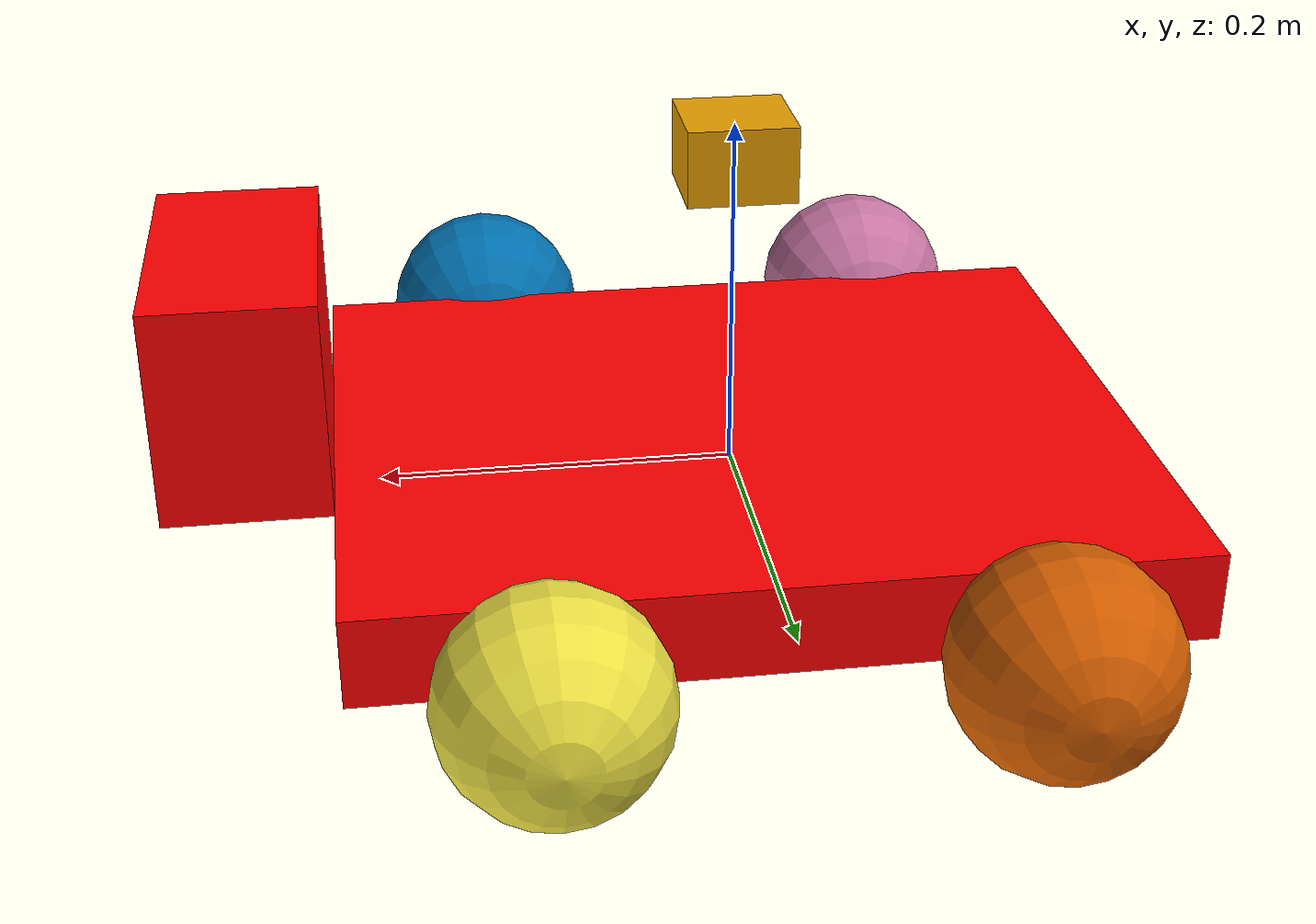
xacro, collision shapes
<?xml version="1.0"?>
<robot xmlns:xacro="http://www.ros.org/wiki/xacro">

    <xacro:include filename="$(find hibachi_description)/urdf/inertial_macros.xacro" />
    <xacro:include filename="$(find hibachi_description)/urdf/wheel.urdf.xacro" />

	<!--  Wheel distance between front and rear -->
	<xacro:property name="wheel_distance" value="0.25" />

	<!-- Wheel distance between left and right side -->
	<xacro:property name="wheel_separation" value="0.475" />

	<!-- Wheel properties -->
	<xacro:property name="wheel_mass" value="0.150" />
	<xacro:property name="wheel_radius" value="0.06" />
	<xacro:property name="wheel_width" value="0.06" />

	<!-- Chassis size -->
	<xacro:property name="chassis_x_size" value="0.45" />
	<xacro:property name="chassis_y_size" value="0.38" />
	<xacro:property name="chassis_z_size" value="0.05" />

	<!-- https://docs.ros.org/en/humble/Tutorials/Intermediate/URDF/Adding-Physical-and-Collision-Properties-to-a-URDF-Model.html -->

    <link name="base_link">

		<visual>
    		<origin xyz="0 0 0" rpy="0 0 0" />
			<geometry>
				<box size="${chassis_x_size} ${chassis_y_size} ${chassis_z_size}"/>
			</geometry>
			<material name="Red">
				<color rgba="${255/255} ${0/255} ${0/255} 1.0"/>
			</material>
		</visual>

		<collision>
			<origin xyz="0 0 0"/>
			<geometry>
				<box size="${chassis_x_size} ${chassis_y_size} ${chassis_z_size}"/>
			</geometry>
		</collision>

		<visual>
    		<origin xyz="${chassis_x_size/2 + 0.045} 0 ${chassis_z_size/2 + 0.06}" rpy="0 0 0" />
			<geometry>
				<box size="0.09 0.17 0.12"/>
			</geometry>
			<material name="Green">
				<color rgba="${0/255} ${255/255} ${0/255} 1.0"/>
			</material>
		</visual>

		<collision>
			<origin xyz="${chassis_x_size/2 + 0.045} 0 ${chassis_z_size/2 + 0.06}" rpy="0 0 0" />
			<geometry>
				<box size="0.09 0.17 0.12"/>
			</geometry>
		</collision>

    </link>

	<!-- Base footprint is on the ground under the robot -->
    <link name="base_footprint">
		<xacro:dummy_inertial />
	</link>

    <joint name="base_footprint_joint" type="fixed">
        <origin xyz="0 0 ${-wheel_radius}" rpy="0 0 0" />
        <parent link="base_link" />
        <child link="base_footprint" />
    </joint>

	<!-- Interial link stores the robot's inertial information -->
    <link name="inertial_link">
		<xacro:inertial_box mass="2.0" x="${chassis_x_size}" y="${chassis_y_size}" z="${chassis_z_size}">
            <origin xyz="0 0 0" rpy="0 0 0"/>
        </xacro:inertial_box>
    </link>

    <joint name="inertial_joint" type="fixed">
        <origin xyz="0 0 0" rpy="0 0 0" />
        <parent link="base_link" />
        <child link="inertial_link" />
    </joint>

	<!-- Wheel macros -->
	<xacro:hibachi_wheel wheel_prefix="front_left">
		<origin xyz="${wheel_distance/2} ${wheel_separation/2} 0" rpy="0 0 0" />
	</xacro:hibachi_wheel>

	<xacro:hibachi_wheel wheel_prefix="front_right">
		<origin xyz="${wheel_distance/2} ${-wheel_separation/2} 0" rpy="0 0 0" />
	</xacro:hibachi_wheel>

	<xacro:hibachi_wheel wheel_prefix="rear_left">
		<origin xyz="${-wheel_distance/2} ${wheel_separation/2} 0" rpy="0 0 0" />
	</xacro:hibachi_wheel>

	<xacro:hibachi_wheel wheel_prefix="rear_right">
		<origin xyz="${-wheel_distance/2} ${-wheel_separation/2} 0" rpy="0 0 0" />
	</xacro:hibachi_wheel>

    <!-- Sensors -->

	<!-- MTI630 IMU -->
	<link name="xsens_imu_link">
		<xacro:dummy_inertial />
	</link>

	<joint name="xsens_imu_joint" type="fixed">
		<parent link="base_link" />
		<child link="xsens_imu_link" />
		<origin xyz="0 0 0.05" rpy="0 0 0" />
	</joint>

	<!-- RPLidar S3 -->
	<link name="rplidar_s3_link">
		<xacro:dummy_inertial />
		<collision>
			<origin xyz="0 0 0" rpy="0 0 0"/>
			<geometry>
				<box size="0.06 0.056 0.042"/>
			</geometry>
		</collision>
		<visual>
			<origin xyz="0 0 0" rpy="${pi/2} 0 ${-pi/2}"/>
			<geometry>
				<mesh filename="file://$(find hibachi_description)/meshes/rplidar_s3.stl"  scale="0.001 0.001 0.001"/>
			</geometry>
		</visual>
	</link>

	<joint name="rplidar_joint" type="fixed">
		<parent link="base_link"/>
		<child link="rplidar_s3_link"/>
		<origin xyz="0.0 0.0 ${chassis_z_size/2 + 0.16}" rpy="0 0 ${pi}"/>
	</joint>

	<link name="ardusimple_gps_link">
		<xacro:dummy_inertial />
	</link>

	<joint name="ardusimple_gps_joint" type="fixed">
		<parent link="base_link" />
		<child link="ardusimple_gps_link" />
		<origin xyz="0.0 -0.1 0.2" rpy="0 0 0" />
	</joint>

	<link name="m8n_gps_link">
		<xacro:dummy_inertial />
	</link>

	<joint name="m8n_gps_joint" type="fixed">
		<parent link="base_link" />
		<child link="m8n_gps_link" />
		<origin xyz="0.0 0.1 0.2" rpy="0 0 0" />
	</joint>

</robot>

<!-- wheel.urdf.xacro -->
<robot xmlns:xacro="http://ros.org/wiki/xacro">
    <xacro:macro name="hibachi_wheel" params="wheel_prefix *joint_pose">
        <xacro:property name="link_name" value="${wheel_prefix}_wheel_link" />
        <xacro:property name="joint_name" value="${wheel_prefix}_wheel_joint" />
        <xacro:property name="transmission_name" value="${wheel_prefix}_wheel_trans" />
        <xacro:property name="actuator_name" value="${wheel_prefix}_wheel_actuator" />

        <link name="${link_name}">
            <visual>
                <origin xyz="0 0 0" rpy="${pi/2} 0 0"/>
                <geometry>
                    <xacro:if value="${wheel_prefix == 'front_left'}">
                        <mesh filename="file://$(find hibachi_description)/meshes/tires-dagu-120mm-l.stl"/>
                    </xacro:if>
                    <xacro:if value="${wheel_prefix == 'front_right'}">
                        <mesh filename="file://$(find hibachi_description)/meshes/tires-dagu-120mm-r.stl"/>
                    </xacro:if>
                    <xacro:if value="${wheel_prefix == 'rear_left'}">
                        <mesh filename="file://$(find hibachi_description)/meshes/tires-dagu-120mm-l.stl"/>
                    </xacro:if>
                    <xacro:if value="${wheel_prefix == 'rear_right'}">
                        <mesh filename="file://$(find hibachi_description)/meshes/tires-dagu-120mm-r.stl"/>
                    </xacro:if>
                </geometry>
            </visual>
            <collision>
                <origin xyz="0 0 0" rpy="${pi/2} 0 0"/>
                <geometry>
                    <sphere radius="${wheel_radius}"/>
                </geometry>
            </collision>
            <xacro:inertial_cylinder mass="${wheel_mass}" length="${wheel_width}" radius="${wheel_radius}">
                <origin xyz="0 0 0" rpy="${pi/2} 0 0"/>
            </xacro:inertial_cylinder>

        </link>

        <gazebo reference="${link_name}">
            <visual>
                <material>
                    <ambient>0.175 0.175 0.175 1.0</ambient>
                    <diffuse>0.175 0.175 0.175 1.0</diffuse>
                    <specular>0.175 0.175 0.175 1.0</specular>
                </material>
            </visual>

        </gazebo>

        <joint name="${joint_name}" type="continuous">
            <parent link="base_link"/>
            <child link="${link_name}" />
            <xacro:insert_block name="joint_pose" />
            <axis xyz="0 1 0" rpy="0 0 0" />
        </joint>

    </xacro:macro>

</robot>
